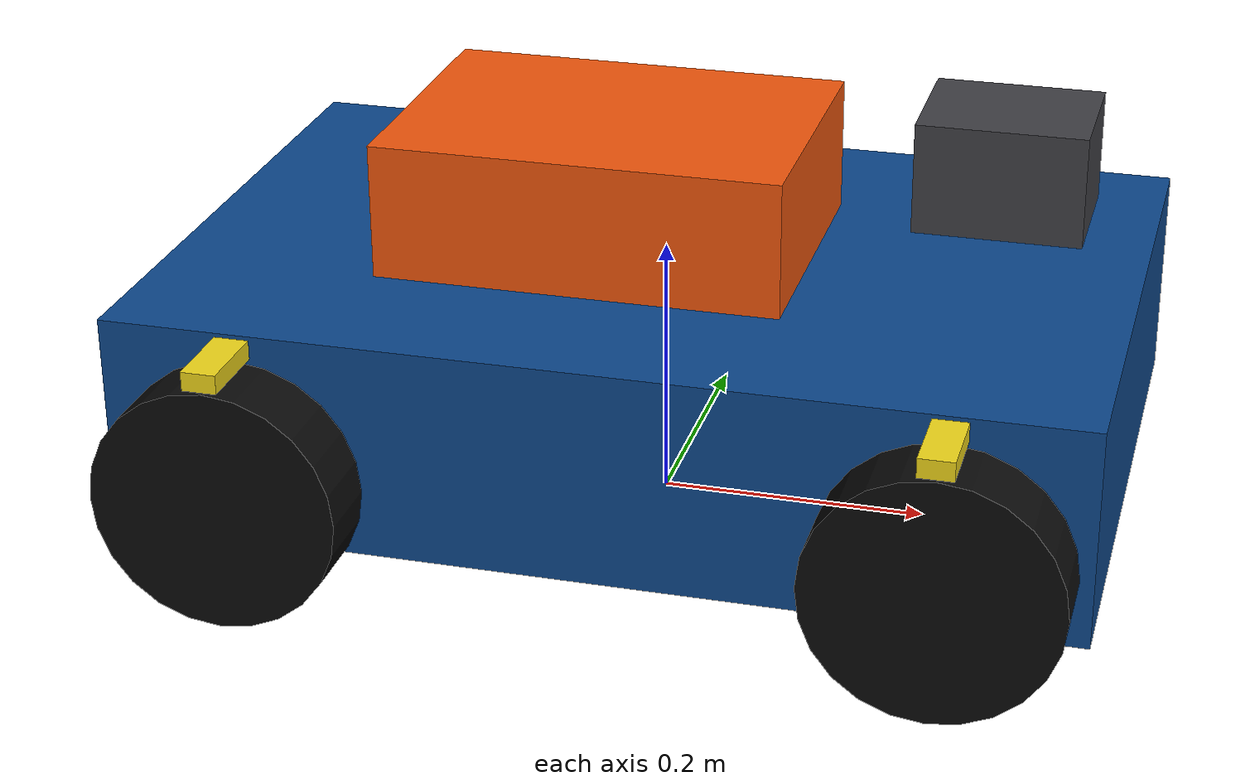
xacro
<?xml version="1.0"?>
<robot name="aky_model_ugv" xmlns:xacro="http://www.ros.org/wiki/xacro">

  <!-- Dimensions are metres. ROS body convention: x forward, y left, z up. -->
  <xacro:property name="chassis_length" value="0.70"/>
  <xacro:property name="chassis_width" value="0.46"/>
  <xacro:property name="chassis_height" value="0.16"/>
  <xacro:property name="base_height" value="0.12"/>
  <xacro:property name="wheel_radius" value="0.09"/>
  <xacro:property name="wheel_width" value="0.06"/>
  <xacro:property name="wheel_x" value="0.25"/>
  <xacro:property name="wheel_y" value="0.255"/>
  <xacro:property name="wheel_z" value="-0.03"/>

  <material name="ugv_blue">
    <color rgba="0.05 0.28 0.55 1.0"/>
  </material>
  <material name="battery_orange">
    <color rgba="0.95 0.34 0.05 1.0"/>
  </material>
  <material name="wheel_black">
    <color rgba="0.04 0.04 0.04 1.0"/>
  </material>
  <material name="wheel_marker">
    <color rgba="0.95 0.85 0.10 1.0"/>
  </material>
  <material name="camera_gray">
    <color rgba="0.25 0.25 0.27 1.0"/>
  </material>

  <!-- The ground-contact frame is the URDF root. -->
  <link name="base_footprint"/>

  <joint name="base_footprint_joint" type="fixed">
    <parent link="base_footprint"/>
    <child link="base_link"/>
    <origin xyz="0 0 ${base_height}" rpy="0 0 0"/>
  </joint>

  <!-- Main chassis. -->
  <link name="base_link">
    <inertial>
      <origin xyz="0 0 0" rpy="0 0 0"/>
      <mass value="12.0"/>
      <inertia ixx="0.35" ixy="0.0" ixz="0.0" iyy="0.55" iyz="0.0" izz="0.70"/>
    </inertial>
    <visual>
      <origin xyz="0 0 0" rpy="0 0 0"/>
      <geometry>
        <box size="${chassis_length} ${chassis_width} ${chassis_height}"/>
      </geometry>
      <material name="ugv_blue"/>
    </visual>
    <collision>
      <origin xyz="0 0 0" rpy="0 0 0"/>
      <geometry>
        <box size="${chassis_length} ${chassis_width} ${chassis_height}"/>
      </geometry>
    </collision>
  </link>

  <!-- A clearly visible battery pack makes this a custom rover rather than a plain box. -->
  <link name="battery_link">
    <visual>
      <geometry>
        <box size="0.30 0.22 0.10"/>
      </geometry>
      <material name="battery_orange"/>
    </visual>
  </link>
  <joint name="battery_joint" type="fixed">
    <parent link="base_link"/>
    <child link="battery_link"/>
    <origin xyz="-0.04 0 0.13" rpy="0 0 0"/>
  </joint>

  <!-- Forward camera and optical frame provide useful, named TF frames. -->
  <link name="camera_link">
    <visual>
      <geometry>
        <box size="0.12 0.10 0.08"/>
      </geometry>
      <material name="camera_gray"/>
    </visual>
  </link>
  <joint name="camera_joint" type="fixed">
    <parent link="base_link"/>
    <child link="camera_link"/>
    <origin xyz="0.25 0 0.17" rpy="0 0 0"/>
  </joint>
  <link name="camera_optical_frame"/>
  <joint name="camera_optical_joint" type="fixed">
    <parent link="camera_link"/>
    <child link="camera_optical_frame"/>
    <origin xyz="0.06 0 0" rpy="-1.5708 0 -1.5708"/>
  </joint>

  <!-- Reusable Xacro macro prevents four copied wheel definitions. -->
  <xacro:macro name="wheel" params="prefix x y">
    <link name="${prefix}_wheel_link">
      <inertial>
        <mass value="0.6"/>
        <inertia ixx="0.003" ixy="0.0" ixz="0.0" iyy="0.003" iyz="0.0" izz="0.002"/>
      </inertial>
      <visual>
        <!-- A cylinder points along z by default, so rotate it onto the y axle. -->
        <origin xyz="0 0 0" rpy="1.5708 0 0"/>
        <geometry>
          <cylinder radius="${wheel_radius}" length="${wheel_width}"/>
        </geometry>
        <material name="wheel_black"/>
      </visual>
      <!-- This off-centre yellow marker makes wheel rotation obvious in RViz. -->
      <visual>
        <origin xyz="0 0 ${wheel_radius + 0.010}" rpy="0 0 0"/>
        <geometry>
          <box size="0.025 0.066 0.014"/>
        </geometry>
        <material name="wheel_marker"/>
      </visual>
      <collision>
        <origin xyz="0 0 0" rpy="1.5708 0 0"/>
        <geometry>
          <cylinder radius="${wheel_radius}" length="${wheel_width}"/>
        </geometry>
      </collision>
    </link>

    <joint name="${prefix}_wheel_joint" type="continuous">
      <parent link="base_link"/>
      <child link="${prefix}_wheel_link"/>
      <origin xyz="${x} ${y} ${wheel_z}" rpy="0 0 0"/>
      <axis xyz="0 1 0"/>
      <limit effort="15.0" velocity="20.0"/>
      <dynamics damping="0.1" friction="0.0"/>
    </joint>
  </xacro:macro>

  <xacro:wheel prefix="front_left" x="${wheel_x}" y="${wheel_y}"/>
  <xacro:wheel prefix="rear_left" x="${-wheel_x}" y="${wheel_y}"/>
  <xacro:wheel prefix="front_right" x="${wheel_x}" y="${-wheel_y}"/>
  <xacro:wheel prefix="rear_right" x="${-wheel_x}" y="${-wheel_y}"/>

</robot>
